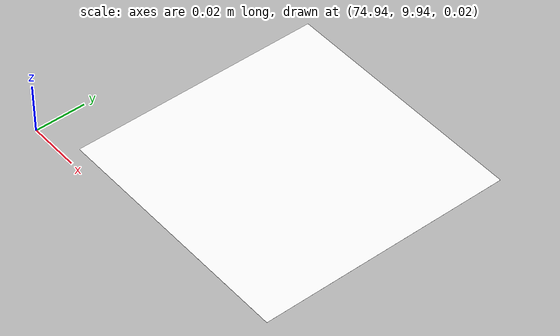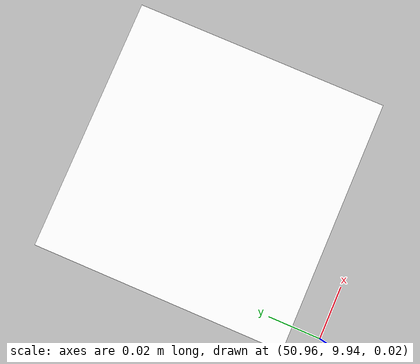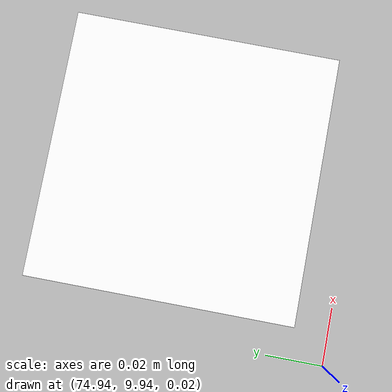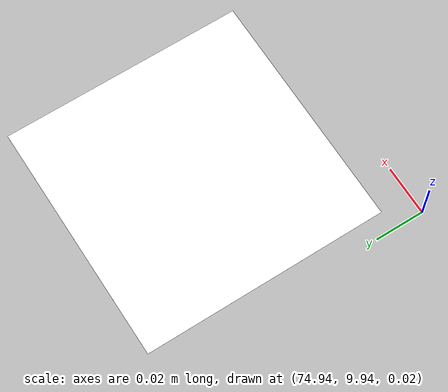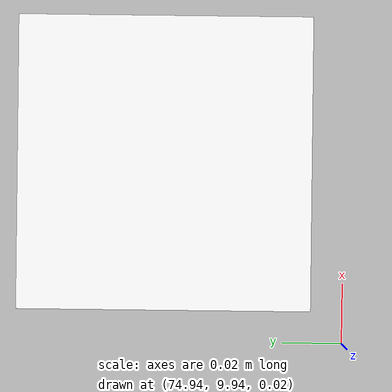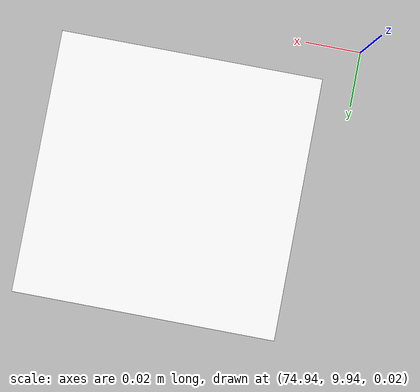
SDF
<sdf version="1.7">
 <world name="factory_ground">
  <gravity>0 0 -9.8</gravity>
  <physics name="default_physics" default="0" type="ode">
   <max_step_size>0.001</max_step_size>
   <real_time_factor>1</real_time_factor>
   <real_time_update_rate>1000</real_time_update_rate>
  </physics>
  <model name="ground_plane">
   <static>1</static>
   <link name="link">
    <collision name="collision">
     <geometry><plane><normal>0 0 1</normal><size>100 100</size></plane></geometry>
     <surface>
      <contact><collide_bitmask>65535</collide_bitmask></contact>
      <friction><ode><mu>100</mu><mu2>50</mu2></ode></friction>
     </surface>
    </collision>
    <visual name="visual">
     <cast_shadows>0</cast_shadows>
     <geometry><plane><normal>0 0 1</normal><size>100 100</size></plane></geometry>
     <material>
      <script><uri>file://media/materials/scripts/gazebo.material</uri><name>Gazebo/Grey</name></script>
     </material>
    </visual>
   </link>
  </model>
  <light name="sun" type="directional">
   <pose>0 0 10 0 -0 0</pose>
   <diffuse>0.8 0.8 0.8 1</diffuse>
   <specular>0.2 0.2 0.2 1</specular>
   <attenuation>
    <range>1000</range>
    <constant>0.9</constant>
    <linear>0.01</linear>
    <quadratic>0.001</quadratic>
   </attenuation>
   <direction>-0.5 0.1 -0.9</direction>
   <spot><inner_angle>0</inner_angle><outer_angle>0</outer_angle><falloff>0</falloff></spot>
  </light>
  <magnetic_field>6e-06 2.3e-05 -4.2e-05</magnetic_field>
  <atmosphere type="adiabatic"/>
  <scene><ambient>0.4 0.4 0.4 1</ambient><background>0.7 0.7 0.7 1</background><shadows>1</shadows></scene>
  <spherical_coordinates>
   <surface_model>EARTH_WGS84</surface_model>
   <latitude_deg>0</latitude_deg>
   <longitude_deg>0</longitude_deg>
   <elevation>0</elevation>
   <heading_deg>0</heading_deg>
  </spherical_coordinates>
  <model name="automobile_factory_Ground">
   <static>0</static>
   <pose>-0.070606 -0.580731 -0 0.000523 -8.6e-05 -0</pose>
   <link name="link">
    <inertial>
     <mass>1000</mass>
     <inertia>
      <ixx>1.20008e+06</ixx>
      <ixy>0</ixy>
      <ixz>0</ixz>
      <iyy>8.33342e+06</iyy>
      <iyz>0</iyz>
      <izz>2.03333e+06</izz>
     </inertia>
    </inertial>
    <collision name="collision">
     <pose>80 37.5 0</pose>
     <geometry><plane><normal>0 0 1</normal><size>160 75</size></plane></geometry>
     <surface>
      <friction><ode><mu>100</mu><mu2>50</mu2><fdir1>0 0 0</fdir1><slip1>0</slip1><slip2>0</slip2></ode></friction>
     </surface>
    </collision>
    <visual name="visual">
     <geometry>
      <mesh><uri>model://automobile_factory_Ground/meshes/automobile_factory_Ground.dae</uri></mesh>
     </geometry>
     <meta><layer>1</layer></meta>
    </visual>
   </link>
   <static>1</static>
  </model>
  <model name="marker_1">
   <link name="marker">
    <visual name="visual">
     <geometry><box><size>0.1 0.1 1e-05</size></box></geometry>
     <material>
      <script>
       <uri>model://marker_1/materials/scripts</uri>
       <uri>model://marker_1/materials/textures</uri>
       <name>marker_material1</name>
      </script>
      <ambient>1 1 1 1</ambient>
      <diffuse>1 1 1 1</diffuse>
      <specular>0 0 0 1</specular>
      <emissive>1 1 1 0</emissive>
      <shader type="vertex"><normal_map>__default__</normal_map></shader>
     </material>
    </visual>
    <collision name="collision"><geometry><box><size>0.1 0.1 1e-05</size></box></geometry></collision>
   </link>
   <link name="marker_pad">
    <pose relative_to="marker">0 0 -1e-05 0 -0 0</pose>
    <visual name="visual">
     <geometry><box><size>0.1 0.1 1e-05</size></box></geometry>
     <material>
      <lighting>1</lighting>
      <script><uri>file://media/materials/scripts/gazebo.material</uri><name>Gazebo/White</name></script>
      <ambient>0.3 0.3 0.3 1</ambient>
      <diffuse>0.7 0.7 0.7 1</diffuse>
      <specular>0.01 0.01 0.01 1</specular>
      <emissive>1 1 1 0</emissive>
      <shader type="vertex"><normal_map>__default__</normal_map></shader>
     </material>
    </visual>
    <collision name="collision"><geometry><box><size>0.1 0.1 1e-05</size></box></geometry></collision>
   </link>
   <joint name="marker_JOINT_marker_pad" type="revolute">
    <parent>marker</parent>
    <child>marker_pad</child>
    <axis>
     <xyz>0 0 1</xyz>
     <limit><upper>0</upper><lower>0</lower></limit>
     <dynamics><spring_reference>0</spring_reference><spring_stiffness>0</spring_stiffness></dynamics>
    </axis>
   </joint>
   <static>1</static>
   <pose>32 10 0.012563 0 -0 0</pose>
  </model>
  <model name="marker_2">
   <link name="marker">
    <visual name="visual">
     <geometry><box><size>0.1 0.1 1e-05</size></box></geometry>
     <material>
      <script>
       <uri>model://marker_2/materials/scripts</uri>
       <uri>model://marker_2/materials/textures</uri>
       <name>marker_material2</name>
      </script>
      <ambient>1 1 1 1</ambient>
      <diffuse>1 1 1 1</diffuse>
      <specular>0 0 0 1</specular>
      <emissive>1 1 1 0</emissive>
      <shader type="vertex"><normal_map>__default__</normal_map></shader>
     </material>
    </visual>
    <collision name="collision"><geometry><box><size>0.1 0.1 1e-05</size></box></geometry></collision>
   </link>
   <link name="marker_pad">
    <pose relative_to="marker">0 0 -1e-05 0 -0 0</pose>
    <visual name="visual">
     <geometry><box><size>0.1 0.1 1e-05</size></box></geometry>
     <material>
      <lighting>1</lighting>
      <script><uri>file://media/materials/scripts/gazebo.material</uri><name>Gazebo/White</name></script>
      <ambient>0.3 0.3 0.3 1</ambient>
      <diffuse>0.7 0.7 0.7 1</diffuse>
      <specular>0.01 0.01 0.01 1</specular>
      <emissive>1 1 1 0</emissive>
      <shader type="vertex"><normal_map>__default__</normal_map></shader>
     </material>
    </visual>
    <collision name="collision"><geometry><box><size>0.1 0.1 1e-05</size></box></geometry></collision>
   </link>
   <joint name="marker_JOINT_marker_pad" type="revolute">
    <parent>marker</parent>
    <child>marker_pad</child>
    <axis>
     <xyz>0 0 1</xyz>
     <limit><upper>0</upper><lower>0</lower></limit>
     <dynamics><spring_reference>0</spring_reference><spring_stiffness>0</spring_stiffness></dynamics>
    </axis>
   </joint>
   <static>1</static>
   <pose>32 20 0.012563 0 -0 0</pose>
  </model>
  <model name="marker_3">
   <link name="marker">
    <visual name="visual">
     <geometry><box><size>0.1 0.1 1e-05</size></box></geometry>
     <material>
      <script>
       <uri>model://marker_3/materials/scripts</uri>
       <uri>model://marker_3/materials/textures</uri>
       <name>marker_material3</name>
      </script>
      <ambient>1 1 1 1</ambient>
      <diffuse>1 1 1 1</diffuse>
      <specular>0 0 0 1</specular>
      <emissive>1 1 1 0</emissive>
      <shader type="vertex"><normal_map>__default__</normal_map></shader>
     </material>
    </visual>
    <collision name="collision"><geometry><box><size>0.1 0.1 1e-05</size></box></geometry></collision>
   </link>
   <link name="marker_pad">
    <pose relative_to="marker">0 0 -1e-05 0 -0 0</pose>
    <visual name="visual">
     <geometry><box><size>0.1 0.1 1e-05</size></box></geometry>
     <material>
      <lighting>1</lighting>
      <script><uri>file://media/materials/scripts/gazebo.material</uri><name>Gazebo/White</name></script>
      <ambient>0.3 0.3 0.3 1</ambient>
      <diffuse>0.7 0.7 0.7 1</diffuse>
      <specular>0.01 0.01 0.01 1</specular>
      <emissive>1 1 1 0</emissive>
      <shader type="vertex"><normal_map>__default__</normal_map></shader>
     </material>
    </visual>
    <collision name="collision"><geometry><box><size>0.1 0.1 1e-05</size></box></geometry></collision>
   </link>
   <joint name="marker_JOINT_marker_pad" type="revolute">
    <parent>marker</parent>
    <child>marker_pad</child>
    <axis>
     <xyz>0 0 1</xyz>
     <limit><upper>0</upper><lower>0</lower></limit>
     <dynamics><spring_reference>0</spring_reference><spring_stiffness>0</spring_stiffness></dynamics>
    </axis>
   </joint>
   <static>1</static>
   <pose>51 10 0.012563 0 -0 0</pose>
  </model>
  <model name="marker_4">
   <link name="marker">
    <visual name="visual">
     <geometry><box><size>0.1 0.1 1e-05</size></box></geometry>
     <material>
      <script>
       <uri>model://marker_4/materials/scripts</uri>
       <uri>model://marker_4/materials/textures</uri>
       <name>marker_material4</name>
      </script>
      <ambient>1 1 1 1</ambient>
      <diffuse>1 1 1 1</diffuse>
      <specular>0 0 0 1</specular>
      <emissive>1 1 1 0</emissive>
      <shader type="vertex"><normal_map>__default__</normal_map></shader>
     </material>
    </visual>
    <collision name="collision"><geometry><box><size>0.1 0.1 1e-05</size></box></geometry></collision>
   </link>
   <link name="marker_pad">
    <pose relative_to="marker">0 0 -1e-05 0 -0 0</pose>
    <visual name="visual">
     <geometry><box><size>0.1 0.1 1e-05</size></box></geometry>
     <material>
      <lighting>1</lighting>
      <script><uri>file://media/materials/scripts/gazebo.material</uri><name>Gazebo/White</name></script>
      <ambient>0.3 0.3 0.3 1</ambient>
      <diffuse>0.7 0.7 0.7 1</diffuse>
      <specular>0.01 0.01 0.01 1</specular>
      <emissive>1 1 1 0</emissive>
      <shader type="vertex"><normal_map>__default__</normal_map></shader>
     </material>
    </visual>
    <collision name="collision"><geometry><box><size>0.1 0.1 1e-05</size></box></geometry></collision>
   </link>
   <joint name="marker_JOINT_marker_pad" type="revolute">
    <parent>marker</parent>
    <child>marker_pad</child>
    <axis>
     <xyz>0 0 1</xyz>
     <limit><upper>0</upper><lower>0</lower></limit>
     <dynamics><spring_reference>0</spring_reference><spring_stiffness>0</spring_stiffness></dynamics>
    </axis>
   </joint>
   <static>1</static>
   <pose>51 20 0.012563 0 -0 0</pose>
  </model>
  <model name="marker_6">
   <link name="marker">
    <visual name="visual">
     <geometry><box><size>0.1 0.1 1e-05</size></box></geometry>
     <material>
      <script>
       <uri>model://marker_6/materials/scripts</uri>
       <uri>model://marker_6/materials/textures</uri>
       <name>marker_material6</name>
      </script>
      <ambient>1 1 1 1</ambient>
      <diffuse>1 1 1 1</diffuse>
      <specular>0 0 0 1</specular>
      <emissive>1 1 1 0</emissive>
      <shader type="vertex"><normal_map>__default__</normal_map></shader>
     </material>
    </visual>
    <collision name="collision"><geometry><box><size>0.1 0.1 1e-05</size></box></geometry></collision>
   </link>
   <link name="marker_pad">
    <pose relative_to="marker">0 0 -1e-05 0 -0 0</pose>
    <visual name="visual">
     <geometry><box><size>0.1 0.1 1e-05</size></box></geometry>
     <material>
      <lighting>1</lighting>
      <script><uri>file://media/materials/scripts/gazebo.material</uri><name>Gazebo/White</name></script>
      <ambient>0.3 0.3 0.3 1</ambient>
      <diffuse>0.7 0.7 0.7 1</diffuse>
      <specular>0.01 0.01 0.01 1</specular>
      <emissive>1 1 1 0</emissive>
      <shader type="vertex"><normal_map>__default__</normal_map></shader>
     </material>
    </visual>
    <collision name="collision"><geometry><box><size>0.1 0.1 1e-05</size></box></geometry></collision>
   </link>
   <joint name="marker_JOINT_marker_pad" type="revolute">
    <parent>marker</parent>
    <child>marker_pad</child>
    <axis>
     <xyz>0 0 1</xyz>
     <limit><upper>0</upper><lower>0</lower></limit>
     <dynamics><spring_reference>0</spring_reference><spring_stiffness>0</spring_stiffness></dynamics>
    </axis>
   </joint>
   <static>1</static>
   <pose>75 10 0.012563 0 -0 0</pose>
  </model>
  <model name="marker_7">
   <link name="marker">
    <visual name="visual">
     <geometry><box><size>0.1 0.1 1e-05</size></box></geometry>
     <material>
      <script>
       <uri>model://marker_7/materials/scripts</uri>
       <uri>model://marker_7/materials/textures</uri>
       <name>marker_material7</name>
      </script>
      <ambient>1 1 1 1</ambient>
      <diffuse>1 1 1 1</diffuse>
      <specular>0 0 0 1</specular>
      <emissive>1 1 1 0</emissive>
      <shader type="vertex"><normal_map>__default__</normal_map></shader>
     </material>
    </visual>
    <collision name="collision"><geometry><box><size>0.1 0.1 1e-05</size></box></geometry></collision>
   </link>
   <link name="marker_pad">
    <pose relative_to="marker">0 0 -1e-05 0 -0 0</pose>
    <visual name="visual">
     <geometry><box><size>0.1 0.1 1e-05</size></box></geometry>
     <material>
      <lighting>1</lighting>
      <script><uri>file://media/materials/scripts/gazebo.material</uri><name>Gazebo/White</name></script>
      <ambient>0.3 0.3 0.3 1</ambient>
      <diffuse>0.7 0.7 0.7 1</diffuse>
      <specular>0.01 0.01 0.01 1</specular>
      <emissive>1 1 1 0</emissive>
      <shader type="vertex"><normal_map>__default__</normal_map></shader>
     </material>
    </visual>
    <collision name="collision"><geometry><box><size>0.1 0.1 1e-05</size></box></geometry></collision>
   </link>
   <joint name="marker_JOINT_marker_pad" type="revolute">
    <parent>marker</parent>
    <child>marker_pad</child>
    <axis>
     <xyz>0 0 1</xyz>
     <limit><upper>0</upper><lower>0</lower></limit>
     <dynamics><spring_reference>0</spring_reference><spring_stiffness>0</spring_stiffness></dynamics>
    </axis>
   </joint>
   <static>1</static>
   <pose>63 20 0.012563 0 -0 0</pose>
  </model>
  <model name="marker_5">
   <link name="marker">
    <visual name="visual">
     <geometry><box><size>0.1 0.1 1e-05</size></box></geometry>
     <material>
      <script>
       <uri>model://marker_5/materials/scripts</uri>
       <uri>model://marker_5/materials/textures</uri>
       <name>marker_material5</name>
      </script>
      <ambient>1 1 1 1</ambient>
      <diffuse>1 1 1 1</diffuse>
      <specular>0 0 0 1</specular>
      <emissive>1 1 1 0</emissive>
      <shader type="vertex"><normal_map>__default__</normal_map></shader>
     </material>
    </visual>
    <collision name="collision"><geometry><box><size>0.1 0.1 1e-05</size></box></geometry></collision>
   </link>
   <link name="marker_pad">
    <pose relative_to="marker">0 0 -1e-05 0 -0 0</pose>
    <visual name="visual">
     <geometry><box><size>0.1 0.1 1e-05</size></box></geometry>
     <material>
      <lighting>1</lighting>
      <script><uri>file://media/materials/scripts/gazebo.material</uri><name>Gazebo/White</name></script>
      <ambient>0.3 0.3 0.3 1</ambient>
      <diffuse>0.7 0.7 0.7 1</diffuse>
      <specular>0.01 0.01 0.01 1</specular>
      <emissive>1 1 1 0</emissive>
      <shader type="vertex"><normal_map>__default__</normal_map></shader>
     </material>
    </visual>
    <collision name="collision"><geometry><box><size>0.1 0.1 1e-05</size></box></geometry></collision>
   </link>
   <joint name="marker_JOINT_marker_pad" type="revolute">
    <parent>marker</parent>
    <child>marker_pad</child>
    <axis>
     <xyz>0 0 1</xyz>
     <limit><upper>0</upper><lower>0</lower></limit>
     <dynamics><spring_reference>0</spring_reference><spring_stiffness>0</spring_stiffness></dynamics>
    </axis>
   </joint>
   <static>1</static>
   <pose>51 30 0.012563 0 -0 0</pose>
  </model>
  <model name="marker_8">
   <link name="marker">
    <visual name="visual">
     <geometry><box><size>0.1 0.1 1e-05</size></box></geometry>
     <material>
      <script>
       <uri>model://marker_8/materials/scripts</uri>
       <uri>model://marker_8/materials/textures</uri>
       <name>marker_material8</name>
      </script>
      <ambient>1 1 1 1</ambient>
      <diffuse>1 1 1 1</diffuse>
      <specular>0 0 0 1</specular>
      <emissive>1 1 1 0</emissive>
      <shader type="vertex"><normal_map>__default__</normal_map></shader>
     </material>
    </visual>
    <collision name="collision"><geometry><box><size>0.1 0.1 1e-05</size></box></geometry></collision>
   </link>
   <link name="marker_pad">
    <pose relative_to="marker">0 0 -1e-05 0 -0 0</pose>
    <visual name="visual">
     <geometry><box><size>0.1 0.1 1e-05</size></box></geometry>
     <material>
      <lighting>1</lighting>
      <script><uri>file://media/materials/scripts/gazebo.material</uri><name>Gazebo/White</name></script>
      <ambient>0.3 0.3 0.3 1</ambient>
      <diffuse>0.7 0.7 0.7 1</diffuse>
      <specular>0.01 0.01 0.01 1</specular>
      <emissive>1 1 1 0</emissive>
      <shader type="vertex"><normal_map>__default__</normal_map></shader>
     </material>
    </visual>
    <collision name="collision"><geometry><box><size>0.1 0.1 1e-05</size></box></geometry></collision>
   </link>
   <joint name="marker_JOINT_marker_pad" type="revolute">
    <parent>marker</parent>
    <child>marker_pad</child>
    <axis>
     <xyz>0 0 1</xyz>
     <limit><upper>0</upper><lower>0</lower></limit>
     <dynamics><spring_reference>0</spring_reference><spring_stiffness>0</spring_stiffness></dynamics>
    </axis>
   </joint>
   <static>1</static>
   <pose>63 30 0.012563 0 -0 0</pose>
  </model>
  <model name="marker_11">
   <link name="marker">
    <visual name="visual">
     <geometry><box><size>0.1 0.1 1e-05</size></box></geometry>
     <material>
      <script>
       <uri>model://marker_11/materials/scripts</uri>
       <uri>model://marker_11/materials/textures</uri>
       <name>marker_material11</name>
      </script>
      <ambient>1 1 1 1</ambient>
      <diffuse>1 1 1 1</diffuse>
      <specular>0 0 0 1</specular>
      <emissive>1 1 1 0</emissive>
      <shader type="vertex"><normal_map>__default__</normal_map></shader>
     </material>
    </visual>
    <collision name="collision"><geometry><box><size>0.1 0.1 1e-05</size></box></geometry></collision>
   </link>
   <link name="marker_pad">
    <pose relative_to="marker">0 0 -1e-05 0 -0 0</pose>
    <visual name="visual">
     <geometry><box><size>0.1 0.1 1e-05</size></box></geometry>
     <material>
      <lighting>1</lighting>
      <script><uri>file://media/materials/scripts/gazebo.material</uri><name>Gazebo/White</name></script>
      <ambient>0.3 0.3 0.3 1</ambient>
      <diffuse>0.7 0.7 0.7 1</diffuse>
      <specular>0.01 0.01 0.01 1</specular>
      <emissive>1 1 1 0</emissive>
      <shader type="vertex"><normal_map>__default__</normal_map></shader>
     </material>
    </visual>
    <collision name="collision"><geometry><box><size>0.1 0.1 1e-05</size></box></geometry></collision>
   </link>
   <joint name="marker_JOINT_marker_pad" type="revolute">
    <parent>marker</parent>
    <child>marker_pad</child>
    <axis>
     <xyz>0 0 1</xyz>
     <limit><upper>0</upper><lower>0</lower></limit>
     <dynamics><spring_reference>0</spring_reference><spring_stiffness>0</spring_stiffness></dynamics>
    </axis>
   </joint>
   <static>1</static>
   <pose>75 30 0.012563 0 -0 0</pose>
  </model>
  <model name="marker_10">
   <link name="marker">
    <visual name="visual">
     <geometry><box><size>0.1 0.1 1e-05</size></box></geometry>
     <material>
      <script>
       <uri>model://marker_10/materials/scripts</uri>
       <uri>model://marker_10/materials/textures</uri>
       <name>marker_material10</name>
      </script>
      <ambient>1 1 1 1</ambient>
      <diffuse>1 1 1 1</diffuse>
      <specular>0 0 0 1</specular>
      <emissive>1 1 1 0</emissive>
      <shader type="vertex"><normal_map>__default__</normal_map></shader>
     </material>
    </visual>
    <collision name="collision"><geometry><box><size>0.1 0.1 1e-05</size></box></geometry></collision>
   </link>
   <link name="marker_pad">
    <pose relative_to="marker">0 0 -1e-05 0 -0 0</pose>
    <visual name="visual">
     <geometry><box><size>0.1 0.1 1e-05</size></box></geometry>
     <material>
      <lighting>1</lighting>
      <script><uri>file://media/materials/scripts/gazebo.material</uri><name>Gazebo/White</name></script>
      <ambient>0.3 0.3 0.3 1</ambient>
      <diffuse>0.7 0.7 0.7 1</diffuse>
      <specular>0.01 0.01 0.01 1</specular>
      <emissive>1 1 1 0</emissive>
      <shader type="vertex"><normal_map>__default__</normal_map></shader>
     </material>
    </visual>
    <collision name="collision"><geometry><box><size>0.1 0.1 1e-05</size></box></geometry></collision>
   </link>
   <joint name="marker_JOINT_marker_pad" type="revolute">
    <parent>marker</parent>
    <child>marker_pad</child>
    <axis>
     <xyz>0 0 1</xyz>
     <limit><upper>0</upper><lower>0</lower></limit>
     <dynamics><spring_reference>0</spring_reference><spring_stiffness>0</spring_stiffness></dynamics>
    </axis>
   </joint>
   <static>1</static>
   <pose>75 20 0.012563 0 -0 0</pose>
  </model>
  <model name="marker_9">
   <link name="marker">
    <visual name="visual">
     <geometry><box><size>0.1 0.1 1e-05</size></box></geometry>
     <material>
      <script>
       <uri>model://marker_9/materials/scripts</uri>
       <uri>model://marker_9/materials/textures</uri>
       <name>marker_material9</name>
      </script>
      <ambient>1 1 1 1</ambient>
      <diffuse>1 1 1 1</diffuse>
      <specular>0 0 0 1</specular>
      <emissive>1 1 1 0</emissive>
      <shader type="vertex"><normal_map>__default__</normal_map></shader>
     </material>
    </visual>
    <collision name="collision"><geometry><box><size>0.1 0.1 1e-05</size></box></geometry></collision>
   </link>
   <link name="marker_pad">
    <pose relative_to="marker">0 0 -1e-05 0 -0 0</pose>
    <visual name="visual">
     <geometry><box><size>0.1 0.1 1e-05</size></box></geometry>
     <material>
      <lighting>1</lighting>
      <script><uri>file://media/materials/scripts/gazebo.material</uri><name>Gazebo/White</name></script>
      <ambient>0.3 0.3 0.3 1</ambient>
      <diffuse>0.7 0.7 0.7 1</diffuse>
      <specular>0.01 0.01 0.01 1</specular>
      <emissive>1 1 1 0</emissive>
      <shader type="vertex"><normal_map>__default__</normal_map></shader>
     </material>
    </visual>
    <collision name="collision"><geometry><box><size>0.1 0.1 1e-05</size></box></geometry></collision>
   </link>
   <joint name="marker_JOINT_marker_pad" type="revolute">
    <parent>marker</parent>
    <child>marker_pad</child>
    <axis>
     <xyz>0 0 1</xyz>
     <limit><upper>0</upper><lower>0</lower></limit>
     <dynamics><spring_reference>0</spring_reference><spring_stiffness>0</spring_stiffness></dynamics>
    </axis>
   </joint>
   <static>1</static>
   <pose>75 10 0.012563 0 -0 0</pose>
  </model>
 </world>
</sdf>
